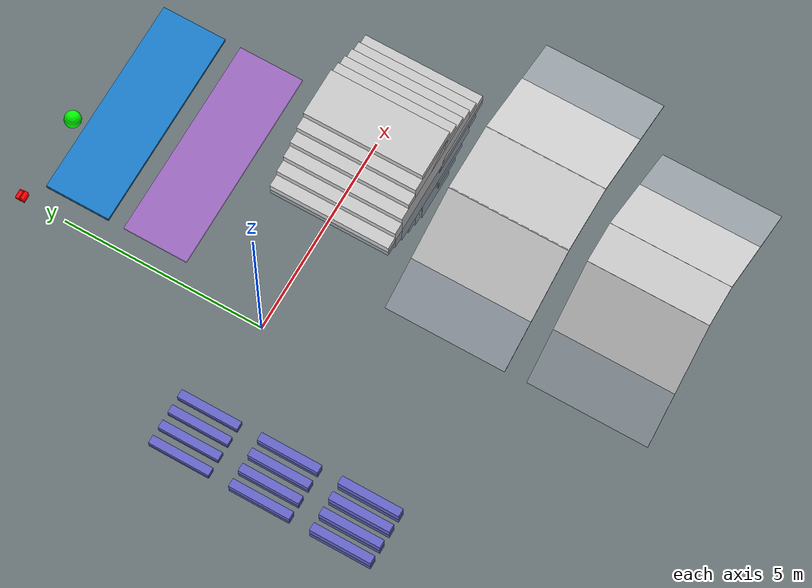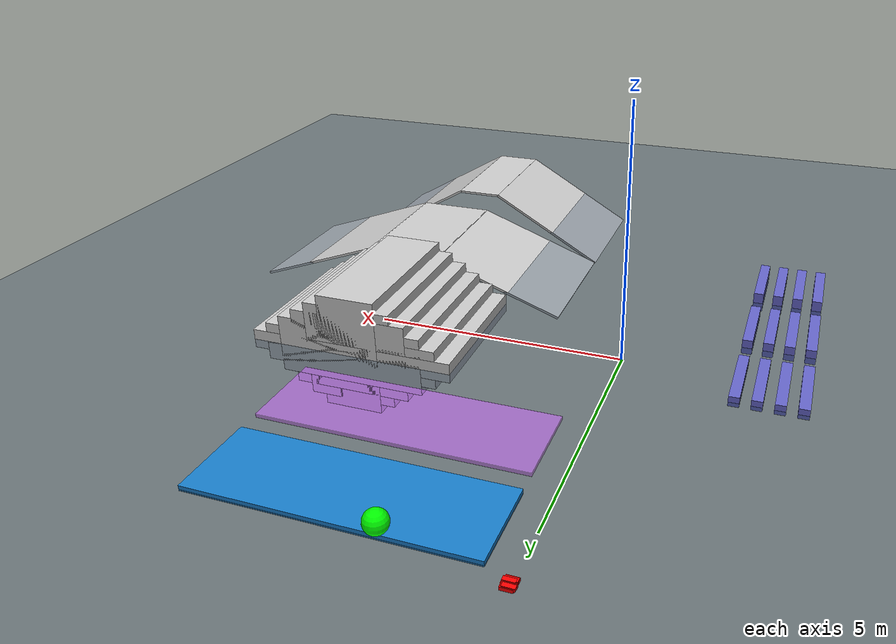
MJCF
<?xml version="1.0" encoding="utf-8"?>
<mujoco model="rbq environment">

    <!-- 통계 정보 -->
    <statistic center="0 0 0.1" extent="0.8"/>

    <!-- 시각화 설정 -->
    <visual>
        <headlight diffuse="0.6 0.6 0.6" ambient="0.3 0.3 0.3" specular="0 0 0"/>
        <rgba haze="0.15 0.25 0.35 1"/>
        <global azimuth="-130" elevation="-20"/>
    </visual>

    <!-- 에셋 정의 -->
    <asset>
        <texture type="skybox" builtin="gradient" rgb1="0.3 0.5 0.7" rgb2="0 0 0" width="512" height="3072"/>
        <texture type="2d" name="groundplane" builtin="checker" mark="edge" rgb1="0.2 0.3 0.4" rgb2="0.1 0.2 0.3"
            markrgb="0.8 0.8 0.8" width="300" height="300"/>
        <material name="groundplane" texture="groundplane" texuniform="true" texrepeat="5 5" reflectance="0.2"/>
    </asset>

    <!-- Default class definitions -->
    <default>
        <default class="obstacle">
            <geom type="box" friction="0.8 0.8 0.8" priority="2"/>
        </default>
        <default class="slippery">
            <geom type="box" priority="2"/>
        </default>
    </default>

    <!-- 월드 바디 정의 -->
    <worldbody>
        <!-- 조명 설정 -->
        <light pos="0 0 1.5" dir="0 0 -1" directional="true"/>
        <light name="robot_light" pos="0 0 2" dir="0 0 -1" diffuse="0.7 0.7 0.7" specular="0.2 0.2 0.2"/>

        <!-- 지면 설정 -->
        <geom name="floor" size="0 0 0.1" type="plane" material="groundplane"
            friction="0.8 0.8 0.8"
            solref="-0.02 1"
            solimp="0.9 0.95 0.031"
            condim="6"
            priority="1"/>

        <!-- 장애물 설정-->
        <geom name="obstacle1" class="obstacle" pos="-2.2 0 0"      size="0.1 0.75 0.1"  quat="1.0 0 0 0"    rgba="0.4 0.4 0.8 1" />
        <geom name="obstacle2" class="obstacle" pos="-2.6 0 0"      size="0.1 0.75 0.1"  quat="1.0 0 0 0"    rgba="0.4 0.4 0.8 1" />
        <geom name="obstacle3" class="obstacle" pos="-3.0 0 0"      size="0.1 0.75 0.1"  quat="1.0 0 0 0"    rgba="0.4 0.4 0.8 1" />
        <geom name="obstacle4" class="obstacle" pos="-3.4 0 0"      size="0.1 0.75 0.1"  quat="1.0 0 0 0"    rgba="0.4 0.4 0.8 1" />
        <geom name="obstacle5" class="obstacle" pos="-2.2 -2 0"     size="0.1 0.75 0.15" quat="1.0 0 0 0"    rgba="0.4 0.4 0.8 1" />
        <geom name="obstacle6" class="obstacle" pos="-2.6 -2 0"     size="0.1 0.75 0.15" quat="1.0 0 0 0"    rgba="0.4 0.4 0.8 1" />
        <geom name="obstacle7" class="obstacle" pos="-3.0 -2 0"     size="0.1 0.75 0.15" quat="1.0 0 0 0"    rgba="0.4 0.4 0.8 1" />
        <geom name="obstacle8" class="obstacle" pos="-3.4 -2 0"     size="0.1 0.75 0.15" quat="1.0 0 0 0"    rgba="0.4 0.4 0.8 1" />
        <geom name="obstacle9" class="obstacle" pos="-2.2 -4 0"     size="0.1 0.75 0.2"  quat="1.0 0 0 0"    rgba="0.4 0.4 0.8 1" />
        <geom name="obstacle10" class="obstacle" pos="-2.6 -4 0"     size="0.1 0.75 0.2"  quat="1.0 0 0 0"    rgba="0.4 0.4 0.8 1" />
        <geom name="obstacle11" class="obstacle" pos="-3.0 -4 0"     size="0.1 0.75 0.2"  quat="1.0 0 0 0"    rgba="0.4 0.4 0.8 1" />
        <geom name="obstacle12" class="obstacle" pos="-3.4 -4 0"     size="0.1 0.75 0.2"  quat="1.0 0 0 0"    rgba="0.4 0.4 0.8 1" />

        <!-- stair terrain-->
        <geom name="stair1" class="obstacle" pos="5 0 0"       size="2.1 1.5 0.2"  quat="1.0 0 0 0" rgba="0.8 0.8 0.8 1"/>
        <geom name="stair2" class="obstacle" pos="5 0 0"       size="1.8 1.5 0.4"  quat="1.0 0 0 0" rgba="0.8 0.8 0.8 1"/>
        <geom name="stair3" class="obstacle" pos="5 0 0"       size="1.5 1.5 0.6"  quat="1.0 0 0 0" rgba="0.8 0.8 0.8 1"/>
        <geom name="stair4" class="obstacle" pos="5 0 0"       size="1.2 1.5 0.8"  quat="1.0 0 0 0" rgba="0.8 0.8 0.8 1"/>
        <geom name="stair5" class="obstacle" pos="5 0 0"       size="0.9 1.5 1.0"  quat="1.0 0 0 0" rgba="0.8 0.8 0.8 1"/>
        <geom name="stair6" class="obstacle" pos="5 0 0"       size="0.6 1.5 1.2"  quat="1.0 0 0 0" rgba="0.8 0.8 0.8 1"/>

        <!-- 20 degree slope terrain -->
        <geom name="slope20_1" class="obstacle" pos="3.3 -3.5 0.05" size="1.5 1.5 0.025" quat="0.9848 0 -0.1736 0" rgba="0.8 0.8 0.8 1"/>
        <geom name="slope20_2" class="obstacle" pos="5.52 -3.5 0.56" size="0.84 1.5 0.025" quat="1 0 0 0" rgba="0.8 0.8 0.8 1"/>
        <geom name="slope20_3" class="obstacle" pos="7.747 -3.5 0.05" size="1.5 1.5 0.025" quat="0.9848 0 0.1736 0" rgba="0.8 0.8 0.8 1"/>

        <!-- 30 degree slope terrain -->
        <geom name="slope30_1" class="obstacle" pos="3.3 -7 0.05" size="1.5 1.5 0.025" quat="0.9659 0 -0.2588 0" rgba="0.8 0.8 0.8 1"/>
        <geom name="slope30_2" class="obstacle" pos="5.1 -7 0.795" size="0.51 1.5 0.025" quat="1 0 0 0" rgba="0.8 0.8 0.8 1"/>
        <geom name="slope30_3" class="obstacle" pos="6.898 -7 0.05" size="1.5 1.5 0.025" quat="0.9659 0 0.2588 0" rgba="0.8 0.8 0.8 1"/>

        <!-- slipery terrain -->
        <geom name="slippery1" class="slippery" pos="3 3 0.005"  quat="1 0 0 0" size="2.5 0.8 0.05" friction="0.2 0.3 0.1" rgba="0.7 0.4 0.9 0.7"/>
        <geom name="slippery2" class="slippery" pos="3 5 0.005"  quat="1 0 0 0" size="2.5 0.8 0.05" friction="0.1 0.1 0.1" rgba="0.1 0.5 0.8 1"/>

        <!-- movable obstacles -->
        <body pos="2 6 0.5">
            <joint type="free"/>
            <geom type="sphere" size="0.2" rgba="0 1 0 1" mass="0.5"/>
        </body>

       <body pos="0.007 6.170 0.114">
            <joint type="free"/>
            <geom type="box" size="0.1 0.04 0.03" rgba="1 0 0 1" mass="1.0"/>
        </body>

        <body pos="0.023 6.162 0.104">
            <joint type="free"/>
            <geom type="box" size="0.1 0.04 0.03" rgba="1 0 0 1" mass="1.0"/>
        </body>

        <body pos="0.011 6.050 0.112">
            <joint type="free"/>
            <geom type="box" size="0.1 0.04 0.03" rgba="1 0 0 1" mass="1.0"/>
        </body>

        <body pos="0.039 6.109 0.085">
            <joint type="free"/>
            <geom type="box" size="0.1 0.04 0.03" rgba="1 0 0 1" mass="1.0"/>
        </body>

        <body pos="0.001 6.183 0.116">
            <joint type="free"/>
            <geom type="box" size="0.1 0.04 0.03" rgba="1 0 0 1" mass="1.0"/>
        </body>

        <body pos="0.006 6.034 0.105">
            <joint type="free"/>
            <geom type="box" size="0.1 0.04 0.03" rgba="1 0 0 1" mass="1.0"/>
        </body>

        <body pos="0.033 6.075 0.114">
            <joint type="free"/>
            <geom type="box" size="0.1 0.04 0.03" rgba="1 0 0 1" mass="1.0"/>
        </body>

        <body pos="0.025 6.193 0.102">
            <joint type="free"/>
            <geom type="box" size="0.1 0.04 0.03" rgba="1 0 0 1" mass="1.0"/>
        </body>

        <body pos="0.014 6.078 0.086">
            <joint type="free"/>
            <geom type="box" size="0.1 0.04 0.03" rgba="1 0 0 1" mass="1.0"/>
        </body>

        <body pos="0.009 6.114 0.084">
            <joint type="free"/>
            <geom type="box" size="0.1 0.04 0.03" rgba="1 0 0 1" mass="1.0"/>
        </body>

    </worldbody>
</mujoco>
